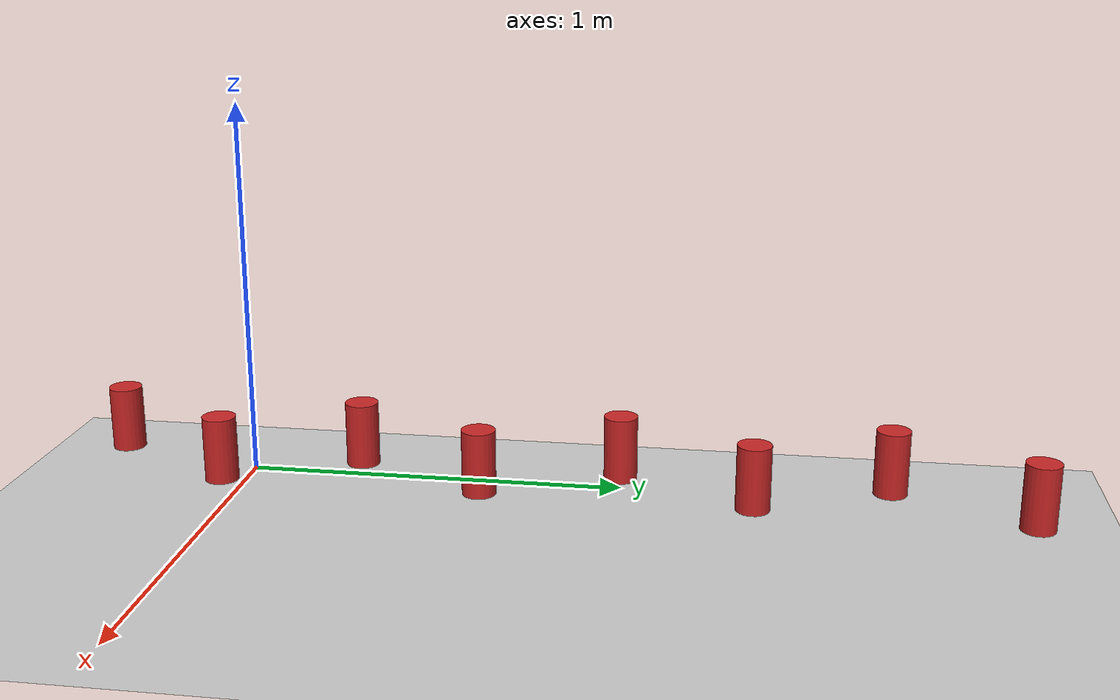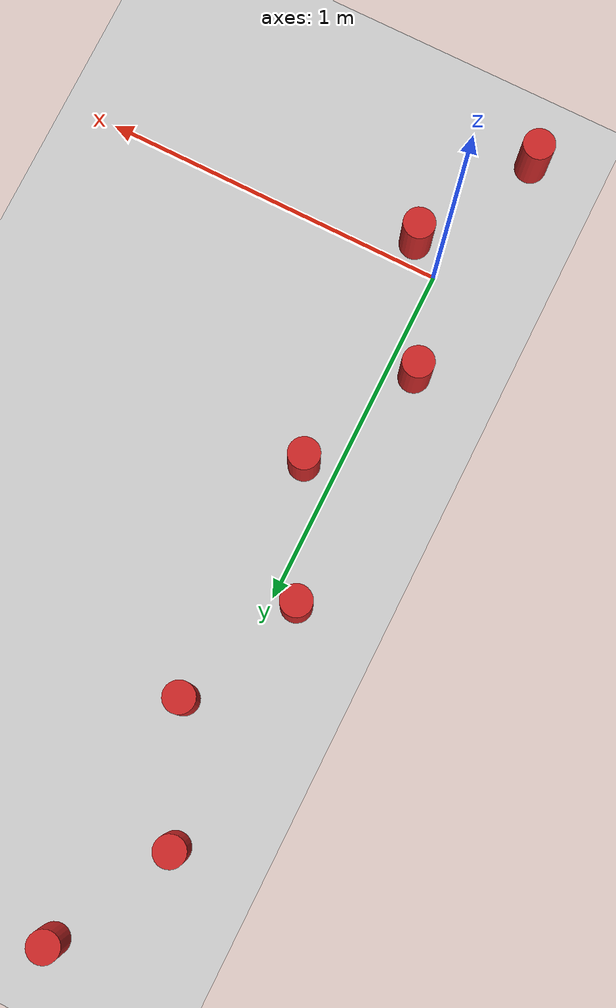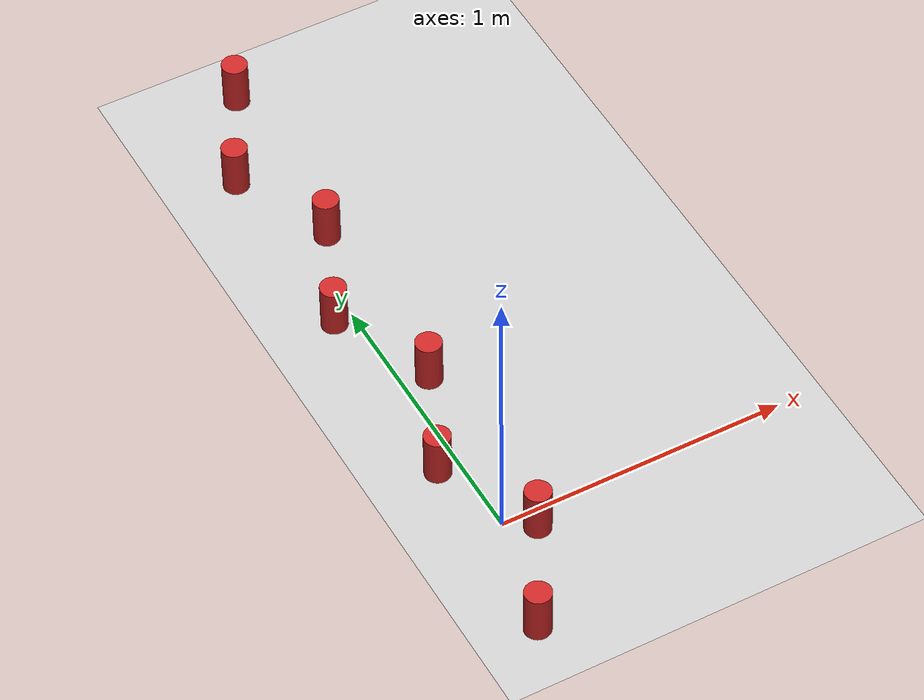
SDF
<sdf version="1.7">
 <world name="default">
  <model name="ground_plane">
   <static>1</static>
   <link name="link">
    <collision name="collision">
     <geometry><plane><normal>0 0 1</normal><size>100 100</size></plane></geometry>
     <surface>
      <contact><collide_bitmask>65535</collide_bitmask></contact>
      <friction><ode><mu>100</mu><mu2>50</mu2></ode></friction>
     </surface>
    </collision>
    <visual name="visual">
     <cast_shadows>0</cast_shadows>
     <geometry><plane><normal>0 0 1</normal><size>100 100</size></plane></geometry>
     <material>
      <script><uri>file://media/materials/scripts/gazebo.material</uri><name>Gazebo/Grey</name></script>
     </material>
    </visual>
   </link>
  </model>
  <model name="model">
   <link name="link_0">
    <inertial>
     <mass>1e+10</mass>
     <inertia>
      <ixx>3.11188e+07</ixx>
      <ixy>0</ixy>
      <ixz>0</ixz>
      <iyy>3.11188e+07</iyy>
      <iyz>0</iyz>
      <izz>1.00639e+07</izz>
     </inertia>
    </inertial>
    <pose>0.081479 -0.882122 0 0 -0 0</pose>
    <visual name="visual">
     <geometry><cylinder><radius>0.0448636</radius><length>0.17693</length></cylinder></geometry>
     <material>
      <lighting>1</lighting>
      <script><uri>file://media/materials/scripts/gazebo.material</uri><name>Gazebo/Red</name></script>
      <shader type="pixel"><normal_map>__default__</normal_map></shader>
      <ambient>1 0 0 1</ambient>
      <diffuse>1 0 0 1</diffuse>
      <specular>0.1 0.1 0.1 1</specular>
      <emissive>0 0 0 1</emissive>
     </material>
    </visual>
    <collision name="collision">
     <geometry><cylinder><radius>0.044864</radius><length>0.17693</length></cylinder></geometry>
     <surface>
      <friction>
       <ode><mu>1</mu><mu2>1</mu2><fdir1>0 0 0</fdir1><slip1>0</slip1><slip2>0</slip2></ode>
       <torsional>
        <coefficient>1</coefficient>
        <patch_radius>0</patch_radius>
        <surface_radius>0</surface_radius>
        <use_patch_radius>1</use_patch_radius>
        <ode><slip>0</slip></ode>
       </torsional>
      </friction>
      <bounce><restitution_coefficient>0</restitution_coefficient><threshold>1e+06</threshold></bounce>
      <contact>
       <collide_without_contact>0</collide_without_contact>
       <collide_without_contact_bitmask>1</collide_without_contact_bitmask>
       <collide_bitmask>1</collide_bitmask>
       <ode>
        <soft_cfm>0</soft_cfm>
        <soft_erp>0.2</soft_erp>
        <kp>1e+13</kp>
        <kd>1</kd>
        <max_vel>0.01</max_vel>
        <min_depth>0</min_depth>
       </ode>
       <bullet>
        <split_impulse>1</split_impulse>
        <split_impulse_penetration_threshold>-0.01</split_impulse_penetration_threshold>
        <soft_cfm>0</soft_cfm>
        <soft_erp>0.2</soft_erp>
        <kp>1e+13</kp>
        <kd>1</kd>
       </bullet>
      </contact>
     </surface>
    </collision>
   </link>
   <link name="link_0_clone">
    <inertial>
     <mass>1e+10</mass>
     <inertia>
      <ixx>3.11188e+07</ixx>
      <ixy>0</ixy>
      <ixz>0</ixz>
      <iyy>3.11188e+07</iyy>
      <iyz>0</iyz>
      <izz>1.00639e+07</izz>
     </inertia>
    </inertial>
    <pose>-0.08293 -0.536122 0 0 -0 0</pose>
    <visual name="visual">
     <geometry><cylinder><radius>0.0448636</radius><length>0.17693</length></cylinder></geometry>
     <material>
      <lighting>1</lighting>
      <script><uri>file://media/materials/scripts/gazebo.material</uri><name>Gazebo/Red</name></script>
      <shader type="pixel"><normal_map>__default__</normal_map></shader>
      <ambient>1 0 0 1</ambient>
      <diffuse>1 0 0 1</diffuse>
      <specular>0.1 0.1 0.1 1</specular>
      <emissive>0 0 0 1</emissive>
     </material>
    </visual>
    <collision name="collision">
     <geometry><cylinder><radius>0.044864</radius><length>0.17693</length></cylinder></geometry>
     <surface>
      <friction>
       <ode><mu>1</mu><mu2>1</mu2><fdir1>0 0 0</fdir1><slip1>0</slip1><slip2>0</slip2></ode>
       <torsional>
        <coefficient>1</coefficient>
        <patch_radius>0</patch_radius>
        <surface_radius>0</surface_radius>
        <use_patch_radius>1</use_patch_radius>
        <ode><slip>0</slip></ode>
       </torsional>
      </friction>
      <bounce><restitution_coefficient>0</restitution_coefficient><threshold>1e+06</threshold></bounce>
      <contact>
       <collide_without_contact>0</collide_without_contact>
       <collide_without_contact_bitmask>1</collide_without_contact_bitmask>
       <collide_bitmask>1</collide_bitmask>
       <ode>
        <soft_cfm>0</soft_cfm>
        <soft_erp>0.2</soft_erp>
        <kp>1e+13</kp>
        <kd>1</kd>
        <max_vel>0.01</max_vel>
        <min_depth>0</min_depth>
       </ode>
       <bullet>
        <split_impulse>1</split_impulse>
        <split_impulse_penetration_threshold>-0.01</split_impulse_penetration_threshold>
        <soft_cfm>0</soft_cfm>
        <soft_erp>0.2</soft_erp>
        <kp>1e+13</kp>
        <kd>1</kd>
       </bullet>
      </contact>
     </surface>
    </collision>
   </link>
   <link name="link_0_clone_0">
    <inertial>
     <mass>1e+10</mass>
     <inertia>
      <ixx>3.11188e+07</ixx>
      <ixy>0</ixy>
      <ixz>0</ixz>
      <iyy>3.11188e+07</iyy>
      <iyz>0</iyz>
      <izz>1.00639e+07</izz>
     </inertia>
    </inertial>
    <pose>0.078553 -0.180553 0 0 -0 0</pose>
    <visual name="visual">
     <geometry><cylinder><radius>0.0448636</radius><length>0.17693</length></cylinder></geometry>
     <material>
      <lighting>1</lighting>
      <script><uri>file://media/materials/scripts/gazebo.material</uri><name>Gazebo/Red</name></script>
      <shader type="pixel"><normal_map>__default__</normal_map></shader>
      <ambient>1 0 0 1</ambient>
      <diffuse>1 0 0 1</diffuse>
      <specular>0.1 0.1 0.1 1</specular>
      <emissive>0 0 0 1</emissive>
     </material>
    </visual>
    <collision name="collision">
     <geometry><cylinder><radius>0.044864</radius><length>0.17693</length></cylinder></geometry>
     <surface>
      <friction>
       <ode><mu>1</mu><mu2>1</mu2><fdir1>0 0 0</fdir1><slip1>0</slip1><slip2>0</slip2></ode>
       <torsional>
        <coefficient>1</coefficient>
        <patch_radius>0</patch_radius>
        <surface_radius>0</surface_radius>
        <use_patch_radius>1</use_patch_radius>
        <ode><slip>0</slip></ode>
       </torsional>
      </friction>
      <bounce><restitution_coefficient>0</restitution_coefficient><threshold>1e+06</threshold></bounce>
      <contact>
       <collide_without_contact>0</collide_without_contact>
       <collide_without_contact_bitmask>1</collide_without_contact_bitmask>
       <collide_bitmask>1</collide_bitmask>
       <ode>
        <soft_cfm>0</soft_cfm>
        <soft_erp>0.2</soft_erp>
        <kp>1e+13</kp>
        <kd>1</kd>
        <max_vel>0.01</max_vel>
        <min_depth>0</min_depth>
       </ode>
       <bullet>
        <split_impulse>1</split_impulse>
        <split_impulse_penetration_threshold>-0.01</split_impulse_penetration_threshold>
        <soft_cfm>0</soft_cfm>
        <soft_erp>0.2</soft_erp>
        <kp>1e+13</kp>
        <kd>1</kd>
       </bullet>
      </contact>
     </surface>
    </collision>
   </link>
   <link name="link_0_clone_1">
    <inertial>
     <mass>1e+10</mass>
     <inertia>
      <ixx>3.11188e+07</ixx>
      <ixy>0</ixy>
      <ixz>0</ixz>
      <iyy>3.11188e+07</iyy>
      <iyz>0</iyz>
      <izz>1.00639e+07</izz>
     </inertia>
    </inertial>
    <pose>-0.076096 0.175363 0 0 -0 0</pose>
    <visual name="visual">
     <geometry><cylinder><radius>0.0448636</radius><length>0.17693</length></cylinder></geometry>
     <material>
      <lighting>1</lighting>
      <script><uri>file://media/materials/scripts/gazebo.material</uri><name>Gazebo/Red</name></script>
      <shader type="pixel"><normal_map>__default__</normal_map></shader>
      <ambient>1 0 0 1</ambient>
      <diffuse>1 0 0 1</diffuse>
      <specular>0.1 0.1 0.1 1</specular>
      <emissive>0 0 0 1</emissive>
     </material>
    </visual>
    <collision name="collision">
     <geometry><cylinder><radius>0.044864</radius><length>0.17693</length></cylinder></geometry>
     <surface>
      <friction>
       <ode><mu>1</mu><mu2>1</mu2><fdir1>0 0 0</fdir1><slip1>0</slip1><slip2>0</slip2></ode>
       <torsional>
        <coefficient>1</coefficient>
        <patch_radius>0</patch_radius>
        <surface_radius>0</surface_radius>
        <use_patch_radius>1</use_patch_radius>
        <ode><slip>0</slip></ode>
       </torsional>
      </friction>
      <bounce><restitution_coefficient>0</restitution_coefficient><threshold>1e+06</threshold></bounce>
      <contact>
       <collide_without_contact>0</collide_without_contact>
       <collide_without_contact_bitmask>1</collide_without_contact_bitmask>
       <collide_bitmask>1</collide_bitmask>
       <ode>
        <soft_cfm>0</soft_cfm>
        <soft_erp>0.2</soft_erp>
        <kp>1e+13</kp>
        <kd>1</kd>
        <max_vel>0.01</max_vel>
        <min_depth>0</min_depth>
       </ode>
       <bullet>
        <split_impulse>1</split_impulse>
        <split_impulse_penetration_threshold>-0.01</split_impulse_penetration_threshold>
        <soft_cfm>0</soft_cfm>
        <soft_erp>0.2</soft_erp>
        <kp>1e+13</kp>
        <kd>1</kd>
       </bullet>
      </contact>
     </surface>
    </collision>
   </link>
   <link name="link_0_clone_1_clone">
    <inertial>
     <mass>1e+10</mass>
     <inertia>
      <ixx>3.11188e+07</ixx>
      <ixy>0</ixy>
      <ixz>0</ixz>
      <iyy>3.11188e+07</iyy>
      <iyz>0</iyz>
      <izz>1.00639e+07</izz>
     </inertia>
    </inertial>
    <pose>0.08216 0.531048 0 0 -0 0</pose>
    <visual name="visual">
     <geometry><cylinder><radius>0.0448636</radius><length>0.17693</length></cylinder></geometry>
     <material>
      <lighting>1</lighting>
      <script><uri>file://media/materials/scripts/gazebo.material</uri><name>Gazebo/Red</name></script>
      <shader type="pixel"><normal_map>__default__</normal_map></shader>
      <ambient>1 0 0 1</ambient>
      <diffuse>1 0 0 1</diffuse>
      <specular>0.1 0.1 0.1 1</specular>
      <emissive>0 0 0 1</emissive>
     </material>
    </visual>
    <collision name="collision">
     <geometry><cylinder><radius>0.044864</radius><length>0.17693</length></cylinder></geometry>
     <surface>
      <friction>
       <ode><mu>1</mu><mu2>1</mu2><fdir1>0 0 0</fdir1><slip1>0</slip1><slip2>0</slip2></ode>
       <torsional>
        <coefficient>1</coefficient>
        <patch_radius>0</patch_radius>
        <surface_radius>0</surface_radius>
        <use_patch_radius>1</use_patch_radius>
        <ode><slip>0</slip></ode>
       </torsional>
      </friction>
      <bounce><restitution_coefficient>0</restitution_coefficient><threshold>1e+06</threshold></bounce>
      <contact>
       <collide_without_contact>0</collide_without_contact>
       <collide_without_contact_bitmask>1</collide_without_contact_bitmask>
       <collide_bitmask>1</collide_bitmask>
       <ode>
        <soft_cfm>0</soft_cfm>
        <soft_erp>0.2</soft_erp>
        <kp>1e+13</kp>
        <kd>1</kd>
        <max_vel>0.01</max_vel>
        <min_depth>0</min_depth>
       </ode>
       <bullet>
        <split_impulse>1</split_impulse>
        <split_impulse_penetration_threshold>-0.01</split_impulse_penetration_threshold>
        <soft_cfm>0</soft_cfm>
        <soft_erp>0.2</soft_erp>
        <kp>1e+13</kp>
        <kd>1</kd>
       </bullet>
      </contact>
     </surface>
    </collision>
   </link>
   <link name="link_0_clone_1_clone_0">
    <inertial>
     <mass>1e+10</mass>
     <inertia>
      <ixx>3.11188e+07</ixx>
      <ixy>0</ixy>
      <ixz>0</ixz>
      <iyy>3.11188e+07</iyy>
      <iyz>0</iyz>
      <izz>1.00639e+07</izz>
     </inertia>
    </inertial>
    <pose>-0.073268 0.8857 0 0 -0 0</pose>
    <visual name="visual">
     <geometry><cylinder><radius>0.0448636</radius><length>0.17693</length></cylinder></geometry>
     <material>
      <lighting>1</lighting>
      <script><uri>file://media/materials/scripts/gazebo.material</uri><name>Gazebo/Red</name></script>
      <shader type="pixel"><normal_map>__default__</normal_map></shader>
      <ambient>1 0 0 1</ambient>
      <diffuse>1 0 0 1</diffuse>
      <specular>0.1 0.1 0.1 1</specular>
      <emissive>0 0 0 1</emissive>
     </material>
    </visual>
    <collision name="collision">
     <geometry><cylinder><radius>0.044864</radius><length>0.17693</length></cylinder></geometry>
     <surface>
      <friction>
       <ode><mu>1</mu><mu2>1</mu2><fdir1>0 0 0</fdir1><slip1>0</slip1><slip2>0</slip2></ode>
       <torsional>
        <coefficient>1</coefficient>
        <patch_radius>0</patch_radius>
        <surface_radius>0</surface_radius>
        <use_patch_radius>1</use_patch_radius>
        <ode><slip>0</slip></ode>
       </torsional>
      </friction>
      <bounce><restitution_coefficient>0</restitution_coefficient><threshold>1e+06</threshold></bounce>
      <contact>
       <collide_without_contact>0</collide_without_contact>
       <collide_without_contact_bitmask>1</collide_without_contact_bitmask>
       <collide_bitmask>1</collide_bitmask>
       <ode>
        <soft_cfm>0</soft_cfm>
        <soft_erp>0.2</soft_erp>
        <kp>1e+13</kp>
        <kd>1</kd>
        <max_vel>0.01</max_vel>
        <min_depth>0</min_depth>
       </ode>
       <bullet>
        <split_impulse>1</split_impulse>
        <split_impulse_penetration_threshold>-0.01</split_impulse_penetration_threshold>
        <soft_cfm>0</soft_cfm>
        <soft_erp>0.2</soft_erp>
        <kp>1e+13</kp>
        <kd>1</kd>
       </bullet>
      </contact>
     </surface>
    </collision>
   </link>
   <link name="link_0_clone_1_clone_1">
    <inertial>
     <mass>1e+10</mass>
     <inertia>
      <ixx>3.11188e+07</ixx>
      <ixy>0</ixy>
      <ixz>0</ixz>
      <iyy>3.11188e+07</iyy>
      <iyz>0</iyz>
      <izz>1.00639e+07</izz>
     </inertia>
    </inertial>
    <pose>0.102666 1.23379 0 0 -0 0</pose>
    <visual name="visual">
     <geometry><cylinder><radius>0.0448636</radius><length>0.17693</length></cylinder></geometry>
     <material>
      <lighting>1</lighting>
      <script><uri>file://media/materials/scripts/gazebo.material</uri><name>Gazebo/Red</name></script>
      <shader type="pixel"><normal_map>__default__</normal_map></shader>
      <ambient>1 0 0 1</ambient>
      <diffuse>1 0 0 1</diffuse>
      <specular>0.1 0.1 0.1 1</specular>
      <emissive>0 0 0 1</emissive>
     </material>
    </visual>
    <collision name="collision">
     <geometry><cylinder><radius>0.044864</radius><length>0.17693</length></cylinder></geometry>
     <surface>
      <friction>
       <ode><mu>1</mu><mu2>1</mu2><fdir1>0 0 0</fdir1><slip1>0</slip1><slip2>0</slip2></ode>
       <torsional>
        <coefficient>1</coefficient>
        <patch_radius>0</patch_radius>
        <surface_radius>0</surface_radius>
        <use_patch_radius>1</use_patch_radius>
        <ode><slip>0</slip></ode>
       </torsional>
      </friction>
      <bounce><restitution_coefficient>0</restitution_coefficient><threshold>1e+06</threshold></bounce>
      <contact>
       <collide_without_contact>0</collide_without_contact>
       <collide_without_contact_bitmask>1</collide_without_contact_bitmask>
       <collide_bitmask>1</collide_bitmask>
       <ode>
        <soft_cfm>0</soft_cfm>
        <soft_erp>0.2</soft_erp>
        <kp>1e+13</kp>
        <kd>1</kd>
        <max_vel>0.01</max_vel>
        <min_depth>0</min_depth>
       </ode>
       <bullet>
        <split_impulse>1</split_impulse>
        <split_impulse_penetration_threshold>-0.01</split_impulse_penetration_threshold>
        <soft_cfm>0</soft_cfm>
        <soft_erp>0.2</soft_erp>
        <kp>1e+13</kp>
        <kd>1</kd>
       </bullet>
      </contact>
     </surface>
    </collision>
   </link>
   <link name="link_0_clone_2">
    <inertial>
     <mass>1e+10</mass>
     <inertia>
      <ixx>3.11188e+07</ixx>
      <ixy>0</ixy>
      <ixz>0</ixz>
      <iyy>3.11188e+07</iyy>
      <iyz>0</iyz>
      <izz>1.00639e+07</izz>
     </inertia>
    </inertial>
    <pose>-0.112564 -1.2271 0 0 -0 0</pose>
    <visual name="visual">
     <geometry><cylinder><radius>0.0448636</radius><length>0.17693</length></cylinder></geometry>
     <material>
      <lighting>1</lighting>
      <script><uri>file://media/materials/scripts/gazebo.material</uri><name>Gazebo/Red</name></script>
      <shader type="pixel"><normal_map>__default__</normal_map></shader>
      <ambient>1 0 0 1</ambient>
      <diffuse>1 0 0 1</diffuse>
      <specular>0.1 0.1 0.1 1</specular>
      <emissive>0 0 0 1</emissive>
     </material>
    </visual>
    <collision name="collision">
     <geometry><cylinder><radius>0.044864</radius><length>0.17693</length></cylinder></geometry>
     <surface>
      <friction>
       <ode><mu>1</mu><mu2>1</mu2><fdir1>0 0 0</fdir1><slip1>0</slip1><slip2>0</slip2></ode>
       <torsional>
        <coefficient>1</coefficient>
        <patch_radius>0</patch_radius>
        <surface_radius>0</surface_radius>
        <use_patch_radius>1</use_patch_radius>
        <ode><slip>0</slip></ode>
       </torsional>
      </friction>
      <bounce><restitution_coefficient>0</restitution_coefficient><threshold>1e+06</threshold></bounce>
      <contact>
       <collide_without_contact>0</collide_without_contact>
       <collide_without_contact_bitmask>1</collide_without_contact_bitmask>
       <collide_bitmask>1</collide_bitmask>
       <ode>
        <soft_cfm>0</soft_cfm>
        <soft_erp>0.2</soft_erp>
        <kp>1e+13</kp>
        <kd>1</kd>
        <max_vel>0.01</max_vel>
        <min_depth>0</min_depth>
       </ode>
       <bullet>
        <split_impulse>1</split_impulse>
        <split_impulse_penetration_threshold>-0.01</split_impulse_penetration_threshold>
        <soft_cfm>0</soft_cfm>
        <soft_erp>0.2</soft_erp>
        <kp>1e+13</kp>
        <kd>1</kd>
       </bullet>
      </contact>
     </surface>
    </collision>
   </link>
   <static>1</static>
   <pose>0.008468 0.817097 0.088981 0 -0 0</pose>
  </model>
 </world>
</sdf>
